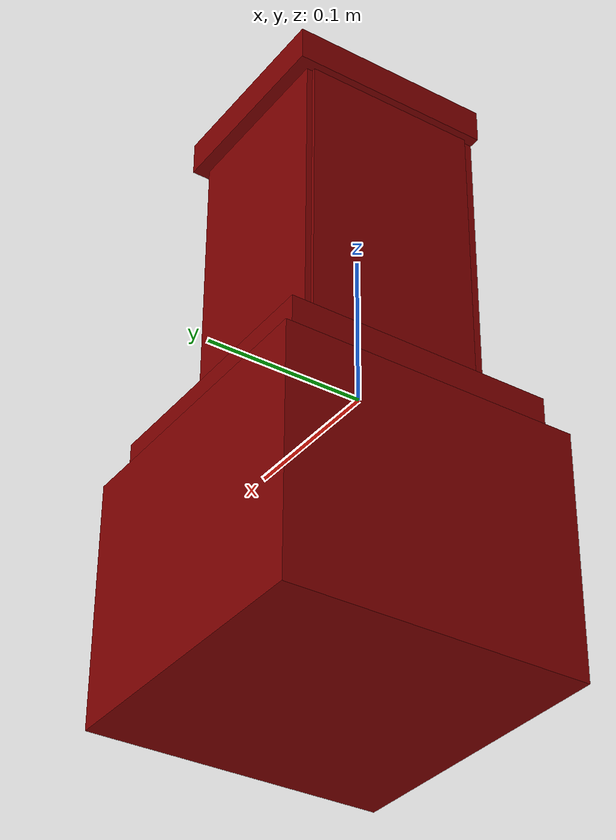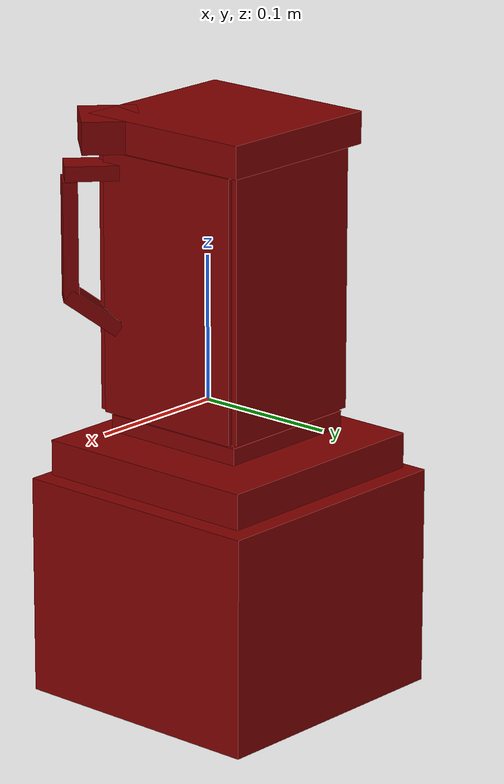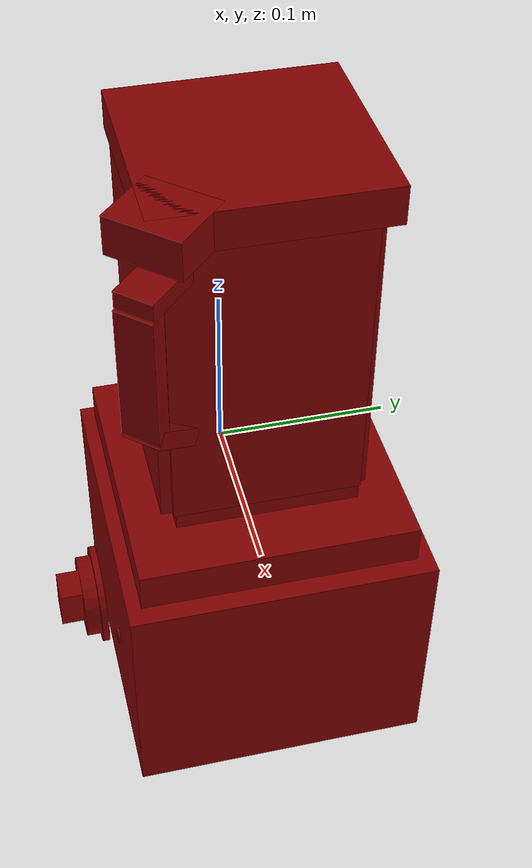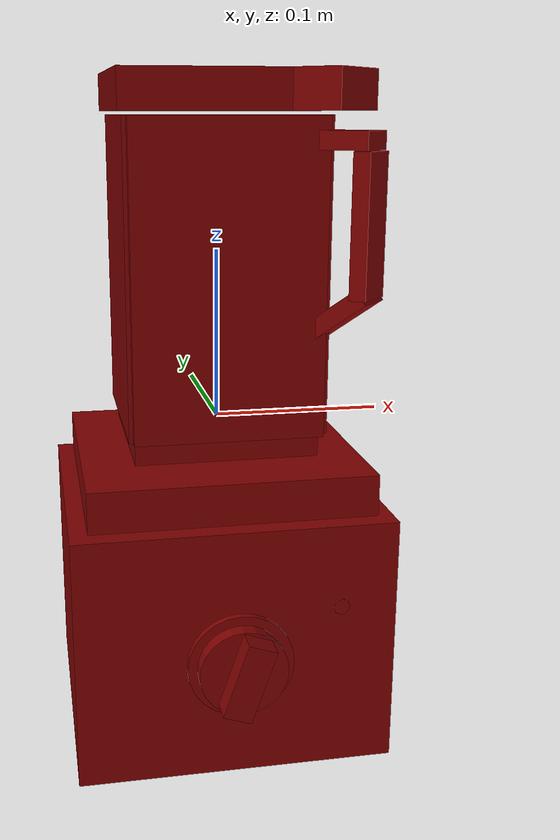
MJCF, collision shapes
<?xml version='1.0' encoding='UTF-8'?>
<mujoco model="model">
  <option timestep="0.002" gravity="0.0 0.0 -9.81"/>
  <compiler angle="radian"/>
  <asset>
    <mesh file="visuals/Blade001.obj" name="Blade001_vis"/>
    <mesh file="visuals/Body001.obj" name="Body001_vis"/>
    <mesh file="visuals/Button001.obj" name="Button001_vis"/>
    <mesh file="visuals/Jug001.obj" name="Jug001_vis"/>
    <mesh file="visuals/Jug001_Clear.obj" name="Jug001_Clear_vis"/>
    <mesh file="visuals/Knob001.obj" name="Knob001_vis"/>
    <mesh file="visuals/Lid001.obj" name="Lid001_vis"/>
    <texture file="visuals/T_BC001.png" name="Body001_material" type="2d"/>
    <material name="Body001_material" rgba="1 1 1 1.0" texture="Body001_material" shininess="0.1" specular="4"/>
    <texture file="visuals/T_BC001.png" name="Button001_material" type="2d"/>
    <material name="Button001_material" rgba="1 1 1 1.0" texture="Button001_material" shininess="0.1" specular="4"/>
    <texture file="visuals/T_BC001.png" name="Jug001_Clear_material" type="2d"/>
    <material name="Jug001_Clear_material" rgba="1 1 1 0.800000011920929" texture="Jug001_Clear_material" shininess="0.5" specular="0.33333333333333337"/>
    <texture file="visuals/T_BC001.png" name="Blade001_material" type="2d"/>
    <material name="Blade001_material" rgba="1 1 1 1.0" texture="Blade001_material" shininess="0.5" specular="0.33333333333333337"/>
    <texture file="visuals/T_BC001.png" name="Jug001_material" type="2d"/>
    <material name="Jug001_material" rgba="1 1 1 1.0" texture="Jug001_material" shininess="0.5" specular="0.33333333333333337"/>
    <texture file="visuals/T_BC001.png" name="Lid001_material" type="2d"/>
    <material name="Lid001_material" rgba="1 1 1 1.0" texture="Lid001_material" shininess="0.5" specular="0.33333333333333337"/>
    <texture file="visuals/T_BC001.png" name="Knob001_material" type="2d"/>
    <material name="Knob001_material" rgba="1 1 1 1.0" texture="Knob001_material" shininess="0.5" specular="0.33333333333333337"/>
  </asset>
  <default>
    <default class="visual">
      <geom conaffinity="0" contype="0" group="1" type="mesh"/>
    </default>
    <default class="collision">
      <geom group="0" rgba="0.5 0 0 0.5"/>
    </default>
    <default class="spawn">
      <geom group="0" rgba="1 1 1 0.5" contype="0" conaffinity="0"/>
      <site group="0" rgba="1 1 1 0.5"/>
    </default>
    <default class="region">
      <geom group="1" conaffinity="0" contype="0" rgba="0 1 0 0"/>
    </default>
  </default>
  <worldbody>
    <body>
      <body name="object">
        <geom mesh="Body001_vis" type="mesh" solimp="0.998 0.998 0.001" solref="0.001 1" friction="0.95 0.3 0.1" class="visual" material="Body001_material"/>
        <geom class="collision" type="box" pos="-0.000429 0.018307 -0.124269" size="0.09404286742210388 0.09189020097255707 0.07564341276884079" quat="1.0 0.0 0.0 0.0" density="1000.0"/>
        <geom class="collision" type="box" pos="-0.000429 0.017386 -0.034635" size="0.08369266241788864 0.08266597986221313 0.012235680595040321" quat="1.0 0.0 0.0 0.0" density="1000.0"/>
        <body name="Button001">
          <joint axis="0.0 1.0 0.0" pos="0.059317 -0.073164 -0.096767" limited="true" name="Button001_joint" range="0.0 0.001" type="slide" damping="1" frictionloss="1" armature=".01" stiffness="0.05"/>
          <geom mesh="Button001_vis" type="mesh" solimp="0.998 0.998 0.001" solref="0.001 1" friction="0.95 0.3 0.1" class="visual" material="Button001_material"/>
          <geom class="collision" type="cylinder" pos="0.059279 -0.077138 -0.096670" size="0.004644408356398344 0.0007194741046987474" quat="0.7071067094802856 -0.7071068286895752 -1.5700929612083792e-16 -2.2148510003422914e-23" density="1000.0"/>
        </body>
        <body name="Jug001_Clear">
          <geom class="region" name="reg_int" type="box" pos="0.0001830000000000026 0.016272000000000002 0.09393699999999999" size="0.044453 0.043405 0.089732"/>
          <joint axis="0.0 0.0 1.0" pos="0.006543 0.010548 0.089337" limited="true" name="Jug001_Clear_joint" range="0.0 0.05" type="slide" damping="1" frictionloss="1" armature=".01" stiffness="0.05"/>
          <geom mesh="Jug001_Clear_vis" type="mesh" solimp="0.998 0.998 0.001" solref="0.001 1" friction="0.95 0.3 0.1" class="visual" material="Jug001_Clear_material"/>
          <geom class="collision" type="box" pos="0.062117 -0.044561 0.162994" size="0.011408685706555843 0.01944798044860363 0.005156984087079763" quat="0.9165320992469788 0.0 0.0 0.3999611437320709" density="1000.0"/>
          <geom class="collision" type="box" pos="0.073958 -0.055218 0.117832" size="0.011408684775233269 0.005029662046581507 0.03966490179300308" quat="0.9165320992469788 0.0 0.0 0.3999611437320709" density="1000.0"/>
          <geom class="collision" type="box" pos="0.063301 -0.045192 0.068301" size="0.011408684775233269 0.005029662046581507 0.020796068012714386" quat="0.8157005906105042 0.41792792081832886 0.18237754702568054 0.3559596538543701" density="1000.0"/>
          <geom class="collision" type="box" pos="-0.000429 -0.042834 0.086349" size="0.05482529476284981 0.0036661962512880564 0.08966895937919617" quat="1.0 0.0 0.0 0.0" density="1000.0"/>
          <geom class="collision" type="box" pos="-0.000429 0.069775 0.086349" size="0.054825298488140106 0.0036661962512880564 0.08966895937919617" quat="1.0 0.0 0.0 0.0" density="1000.0"/>
          <geom class="collision" type="box" pos="-0.053972 0.014875 0.086349" size="0.0036662037018686533 0.0548253133893013 0.08966897428035736" quat="1.0 0.0 0.0 0.0" density="1000.0"/>
          <geom class="collision" type="box" pos="0.054202 0.014875 0.086349" size="0.0036662041675299406 0.0548253133893013 0.08966898173093796" quat="1.0 0.0 0.0 0.0" density="1000.0"/>
          <geom class="collision" type="box" pos="-0.000429 0.014708 -0.001671" size="0.054825309664011 0.054755423218011856 0.002747480059042573" quat="1.0 0.0 0.0 0.0" density="1000.0"/>
          <body name="Blade001">
            <joint axis="0.0 0.0 1.0" pos="-0.000801 0.016577 0.016265" limited="false" name="Blade001_joint" range="0 360" type="hinge" damping="1" frictionloss="1" armature=".01" stiffness="0.05"/>
            <geom mesh="Blade001_vis" type="mesh" solimp="0.998 0.998 0.001" solref="0.001 1" friction="0.95 0.3 0.1" class="visual" material="Blade001_material"/>
            <geom class="collision" type="cylinder" pos="-0.000763 0.016591 0.017329" size="0.008968064561486244 0.01291128620505333" quat="1.0 0.0 0.0 0.0" density="1000.0"/>
            <geom class="collision" type="box" pos="-0.005813 0.004530 0.012768" size="0.003935224376618862 0.006382464896887541 0.0007913180743344128" quat="0.8590430617332458 0.497831791639328 -0.05976736545562744 -0.10313273966312408" density="1000.0"/>
            <geom class="collision" type="box" pos="-0.010419 -0.007412 0.007440" size="0.0034937355667352676 0.009759597480297089 0.0007913181325420737" quat="0.9872918128967285 0.0 -0.0 -0.15891800820827484" density="1000.0"/>
            <geom class="collision" type="box" pos="0.003932 0.029462 0.012768" size="0.003935224376618862 0.006382465828210115 0.0007913180743344128" quat="0.10313277691602707 0.05976737663149834 0.49783167243003845 0.8590431213378906" density="1000.0"/>
            <geom class="collision" type="box" pos="0.008539 0.041404 0.007440" size="0.0034937355667352676 0.009759597480297089 0.0007913181325420737" quat="0.158918097615242 0.0 0.0 0.9872917532920837" density="1000.0"/>
            <geom class="collision" type="box" pos="0.011171 0.012560 0.017377" size="0.003935224376618862 0.006382464896887541 0.0007913180743344128" quat="0.819078803062439 0.0 0.0 0.5736810564994812" density="1000.0"/>
            <geom class="collision" type="box" pos="0.020880 0.008814 0.026639" size="0.0034937357995659113 0.009759597480297089 0.0007913180743344128" quat="0.6929638385772705 -0.45357760787010193 -0.3069186508655548 0.4689023196697235" density="1000.0"/>
            <geom class="collision" type="box" pos="-0.012719 0.020942 0.017637" size="0.003935224376618862 0.006382465362548828 0.0007913180743344128" quat="0.573681116104126 0.0 -0.0 -0.8190787434577942" density="1000.0"/>
            <geom class="collision" type="box" pos="-0.022428 0.024688 0.026899" size="0.0034937355667352676 0.009759597480297089 0.0007913181325420737" quat="0.4689021706581116 -0.3069183826446533 0.4535774290561676 -0.6929641962051392" density="1000.0"/>
          </body>
          <body name="Jug001">
            <geom mesh="Jug001_vis" type="mesh" solimp="0.998 0.998 0.001" solref="0.001 1" friction="0.95 0.3 0.1" class="visual" material="Jug001_material"/>
            <geom class="collision" type="box" pos="-0.000429 0.016205 -0.011688" size="0.05380856990814209 0.054080430418252945 0.005756262689828873" quat="1.0 0.0 0.0 0.0" density="1000.0"/>
          </body>
          <body name="Lid001">
            <joint axis="0.0 0.0 1.0" pos="0.006426 0.010813 0.174838" limited="true" name="Lid001_joint" range="0.0 0.05" type="slide" damping="1" frictionloss="1" armature=".01" stiffness="0.05"/>
            <geom mesh="Lid001_vis" type="mesh" solimp="0.998 0.998 0.001" solref="0.001 1" friction="0.95 0.3 0.1" class="visual" material="Lid001_material"/>
            <geom class="collision" type="box" pos="0.001006 0.016062 0.189207" size="0.06147725507616997 0.06424647569656372 0.011045503430068493" quat="1.0 0.0 0.0 0.0" density="1000.0"/>
            <geom class="collision" type="box" pos="0.053828 -0.037753 0.189207" size="0.02223295532166958 0.01944798417389393 0.011045503430068493" quat="0.9165320992469788 0.0 0.0 0.3999611437320709" density="1000.0"/>
          </body>
        </body>
        <body name="Knob001">
          <joint axis="0.0 1.0 0.0" pos="-0.000861 -0.092748 -0.125231" limited="true" name="Knob001_joint" range="0.0 3.839724354387525" type="hinge" damping="0.05" armature="0.001" springref="-0.1"/>
          <geom mesh="Knob001_vis" type="mesh" solimp="0.998 0.998 0.001" solref="0.001 1" friction="0.95 0.3 0.1" class="visual" material="Knob001_material"/>
          <geom class="collision" type="cylinder" pos="-0.000726 -0.088151 -0.125438" size="0.02554130367934704 0.004874738398939371" quat="0.7071067094802856 -0.7071068286895752 -1.5700929612083792e-16 -2.2148510003422914e-23" density="1000.0"/>
          <geom class="collision" type="cylinder" pos="-0.000726 -0.081725 -0.125438" size="0.03092319332063198 0.0020769285038113594" quat="0.7071067094802856 -0.7071068286895752 -1.5700929612083792e-16 -2.2148510003422914e-23" density="1000.0"/>
          <geom class="collision" type="box" pos="-0.000429 -0.099776 -0.124269" size="0.022272886708378792 0.007574561983346939 0.008471088483929634" quat="0.8130989670753479 3.705337835060822e-14 -0.5821254849433899 1.992527209893069e-08" density="1000.0"/>
        </body>
        <geom class="region" name="reg_main" type="box" pos="0.0 0.014499499999999999 0.0" size="0.097207 0.0944015 0.200541"/>
      </body>
    </body>
  </worldbody>
  <actuator>
    <motor name="Button001_joint_actuator" joint="Button001_joint" gear="0.1"/>
    <motor name="Jug001_Clear_joint_actuator" joint="Jug001_Clear_joint" gear="100"/>
    <motor name="Knob001_joint_actuator" joint="Knob001_joint" gear="10"/>
    <motor name="Blade001_joint_actuator" joint="Blade001_joint" gear="20"/>
    <motor name="Lid001_joint_actuator" joint="Lid001_joint" gear="50"/>
  </actuator>
</mujoco>
